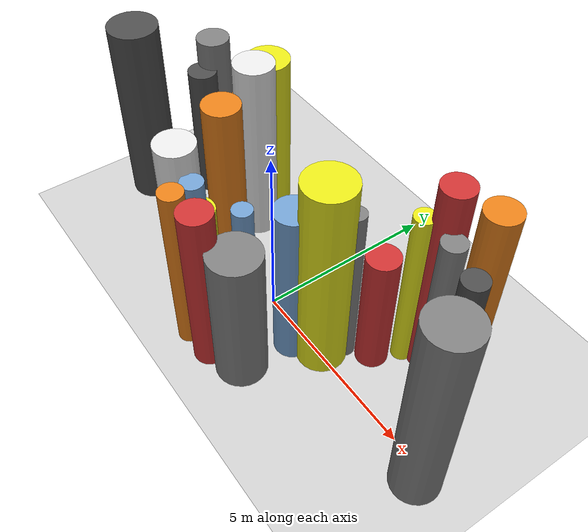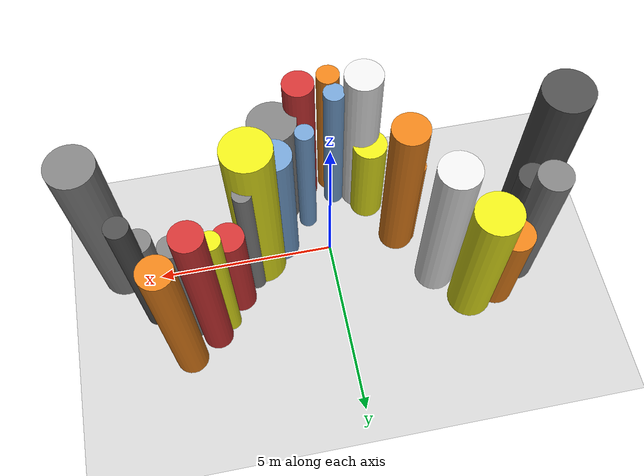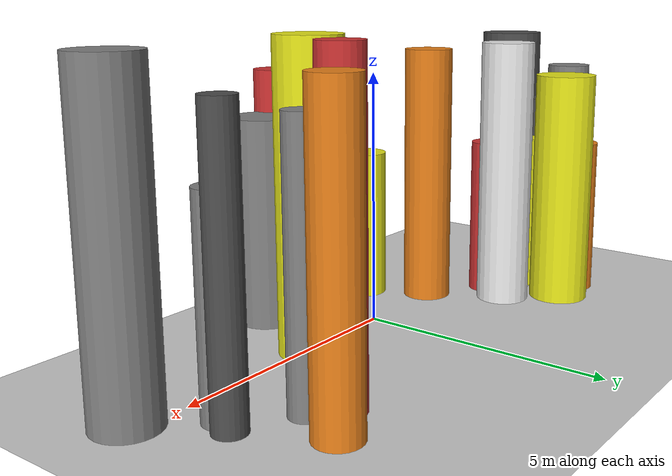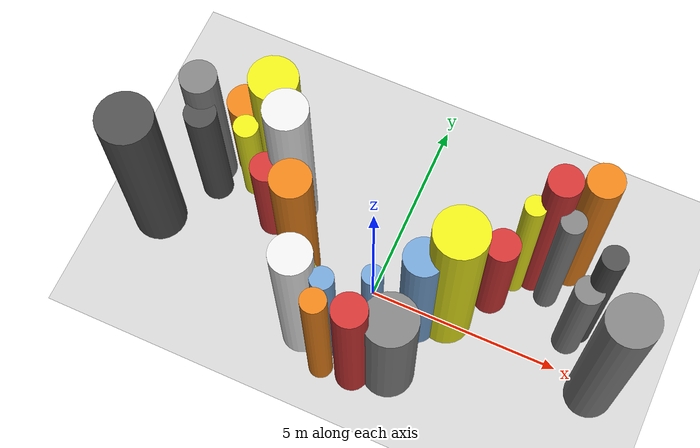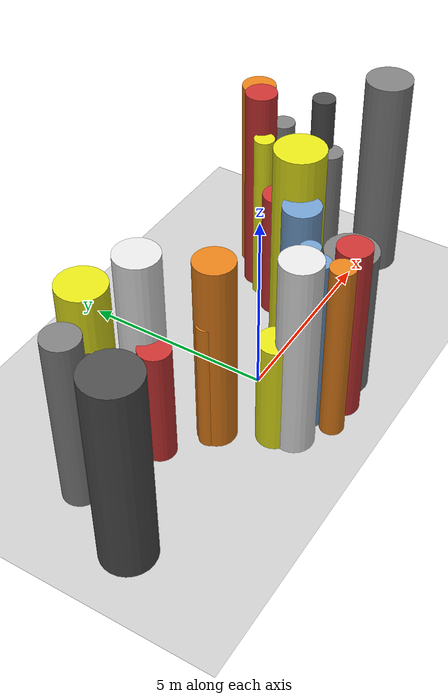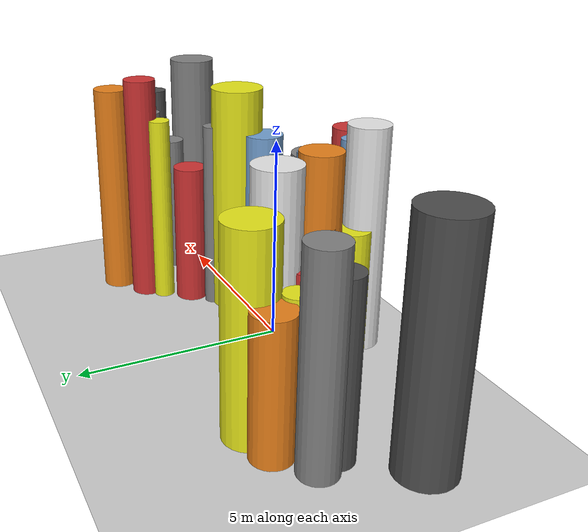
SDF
<?xml version='1.0'?>
<sdf version='1.6'>
  <world name='routeA_rl_v1__dense_recovery__rl_test__s_turn_multi_obstacle__000047'>
    <!-- Sun light -->
    <light name='sun' type='directional'>
      <cast_shadows>1</cast_shadows>
      <pose>0 0 10 0 0 0</pose>
      <diffuse>0.8 0.8 0.8 1</diffuse>
      <specular>0.2 0.2 0.2 1</specular>
      <attenuation>
        <range>1000</range>
        <constant>0.9</constant>
        <linear>0.01</linear>
        <quadratic>0.001</quadratic>
      </attenuation>
      <direction>-0.5 0.1 -0.9</direction>
    </light>

    <!-- Ground plane -->
    <model name='ground_plane'>
      <static>1</static>
      <link name='link'>
        <collision name='collision'>
          <geometry>
            <plane>
              <normal>0 0 1</normal>
              <size>100 100</size>
            </plane>
          </geometry>
          <surface>
            <contact>
              <collide_bitmask>65535</collide_bitmask>
              <ode/>
            </contact>
            <friction>
              <ode>
                <mu>100</mu>
                <mu2>50</mu2>
              </ode>
              <torsional><ode/></torsional>
            </friction>
            <bounce/>
          </surface>
          <max_contacts>10</max_contacts>
        </collision>
        <visual name='visual'>
          <cast_shadows>0</cast_shadows>
          <geometry>
            <plane>
              <normal>0 0 1</normal>
              <size>100 100</size>
            </plane>
          </geometry>
          <material>
            <script>
              <uri>file://media/materials/scripts/gazebo.material</uri>
              <n>Gazebo/Grey</n>
            </script>
          </material>
        </visual>
      </link>
    </model>

    <!-- Environment -->
    <magnetic_field>6e-06 2.3e-05 -4.2e-05</magnetic_field>
    <atmosphere type='adiabatic'/>
    <physics name='default_physics' default='0' type='ode'>
      <gravity>0 0 -9.8</gravity>
      <max_step_size>0.004</max_step_size>
      <real_time_factor>1</real_time_factor>
      <real_time_update_rate>250</real_time_update_rate>
    </physics>
    <scene>
      <ambient>0.4 0.4 0.4 1</ambient>
      <background>0.7 0.7 0.7 1</background>
      <shadows>1</shadows>
    </scene>
    <wind/>
    <spherical_coordinates>
      <surface_model>EARTH_WGS84</surface_model>
      <latitude_deg>0</latitude_deg>
      <longitude_deg>0</longitude_deg>
      <elevation>0</elevation>
      <heading_deg>0</heading_deg>
    </spherical_coordinates>

    <!-- ============ OBSTACLES (28) ============ -->
    <model name='s_turn_obs_0'>
      <static>1</static>
      <link name='link'>
        <visual name='visual'>
          <geometry>
            <cylinder>
              <radius>0.6884</radius>
              <length>5.5017</length>
            </cylinder>
          </geometry>
          <material>
            <script>
              <n>Gazebo/DarkGrey</n>
              <uri>file://media/materials/scripts/gazebo.material</uri>
            </script>
            <ambient>0.3 0.3 0.3 1</ambient>
          </material>
        </visual>
        <collision name='collision'>
          <geometry>
            <cylinder>
              <radius>0.6884</radius>
              <length>5.5017</length>
            </cylinder>
          </geometry>
          <max_contacts>10</max_contacts>
          <surface>
            <contact><ode/></contact>
            <bounce/>
            <friction>
              <ode><mu>1</mu><mu2>1</mu2></ode>
              <torsional><ode/></torsional>
            </friction>
          </surface>
        </collision>
      </link>
      <pose>-6.0000 -0.2894 2.7509 0 0 0.0000</pose>
    </model>

    <model name='s_turn_obs_1'>
      <static>1</static>
      <link name='link'>
        <visual name='visual'>
          <geometry>
            <cylinder>
              <radius>0.4552</radius>
              <length>4.8681</length>
            </cylinder>
          </geometry>
          <material>
            <script>
              <n>Gazebo/Grey</n>
              <uri>file://media/materials/scripts/gazebo.material</uri>
            </script>
            <ambient>0.5 0.5 0.5 1</ambient>
          </material>
        </visual>
        <collision name='collision'>
          <geometry>
            <cylinder>
              <radius>0.4552</radius>
              <length>4.8681</length>
            </cylinder>
          </geometry>
          <max_contacts>10</max_contacts>
          <surface>
            <contact><ode/></contact>
            <bounce/>
            <friction>
              <ode><mu>1</mu><mu2>1</mu2></ode>
              <torsional><ode/></torsional>
            </friction>
          </surface>
        </collision>
      </link>
      <pose>-5.2000 1.6193 2.4341 0 0 0.0000</pose>
    </model>

    <model name='s_turn_obs_2'>
      <static>1</static>
      <link name='link'>
        <visual name='visual'>
          <geometry>
            <cylinder>
              <radius>0.4863</radius>
              <length>3.2634</length>
            </cylinder>
          </geometry>
          <material>
            <script>
              <n>Gazebo/Orange</n>
              <uri>file://media/materials/scripts/gazebo.material</uri>
            </script>
            <ambient>0.9 0.5 0.1 1</ambient>
          </material>
        </visual>
        <collision name='collision'>
          <geometry>
            <cylinder>
              <radius>0.4863</radius>
              <length>3.2634</length>
            </cylinder>
          </geometry>
          <max_contacts>10</max_contacts>
          <surface>
            <contact><ode/></contact>
            <bounce/>
            <friction>
              <ode><mu>1</mu><mu2>1</mu2></ode>
              <torsional><ode/></torsional>
            </friction>
          </surface>
        </collision>
      </link>
      <pose>-4.4000 2.2188 1.6317 0 0 0.0000</pose>
    </model>

    <model name='s_turn_obs_3'>
      <static>1</static>
      <link name='link'>
        <visual name='visual'>
          <geometry>
            <cylinder>
              <radius>0.6132</radius>
              <length>4.8075</length>
            </cylinder>
          </geometry>
          <material>
            <script>
              <n>Gazebo/Yellow</n>
              <uri>file://media/materials/scripts/gazebo.material</uri>
            </script>
            <ambient>0.9 0.9 0.1 1</ambient>
          </material>
        </visual>
        <collision name='collision'>
          <geometry>
            <cylinder>
              <radius>0.6132</radius>
              <length>4.8075</length>
            </cylinder>
          </geometry>
          <max_contacts>10</max_contacts>
          <surface>
            <contact><ode/></contact>
            <bounce/>
            <friction>
              <ode><mu>1</mu><mu2>1</mu2></ode>
              <torsional><ode/></torsional>
            </friction>
          </surface>
        </collision>
      </link>
      <pose>-3.6000 2.3266 2.4037 0 0 0.0000</pose>
    </model>

    <model name='s_turn_obs_4'>
      <static>1</static>
      <link name='link'>
        <visual name='visual'>
          <geometry>
            <cylinder>
              <radius>0.5474</radius>
              <length>5.4879</length>
            </cylinder>
          </geometry>
          <material>
            <script>
              <n>Gazebo/White</n>
              <uri>file://media/materials/scripts/gazebo.material</uri>
            </script>
            <ambient>0.9 0.9 0.9 1</ambient>
          </material>
        </visual>
        <collision name='collision'>
          <geometry>
            <cylinder>
              <radius>0.5474</radius>
              <length>5.4879</length>
            </cylinder>
          </geometry>
          <max_contacts>10</max_contacts>
          <surface>
            <contact><ode/></contact>
            <bounce/>
            <friction>
              <ode><mu>1</mu><mu2>1</mu2></ode>
              <torsional><ode/></torsional>
            </friction>
          </surface>
        </collision>
      </link>
      <pose>-2.8000 1.3881 2.7439 0 0 0.0000</pose>
    </model>

    <model name='s_turn_obs_5'>
      <static>1</static>
      <link name='link'>
        <visual name='visual'>
          <geometry>
            <cylinder>
              <radius>0.4955</radius>
              <length>5.3435</length>
            </cylinder>
          </geometry>
          <material>
            <script>
              <n>Gazebo/Orange</n>
              <uri>file://media/materials/scripts/gazebo.material</uri>
            </script>
            <ambient>0.9 0.5 0.1 1</ambient>
          </material>
        </visual>
        <collision name='collision'>
          <geometry>
            <cylinder>
              <radius>0.4955</radius>
              <length>5.3435</length>
            </cylinder>
          </geometry>
          <max_contacts>10</max_contacts>
          <surface>
            <contact><ode/></contact>
            <bounce/>
            <friction>
              <ode><mu>1</mu><mu2>1</mu2></ode>
              <torsional><ode/></torsional>
            </friction>
          </surface>
        </collision>
      </link>
      <pose>-2.0000 -0.0532 2.6718 0 0 0.0000</pose>
    </model>

    <model name='s_turn_obs_6'>
      <static>1</static>
      <link name='link'>
        <visual name='visual'>
          <geometry>
            <cylinder>
              <radius>0.5070</radius>
              <length>5.5230</length>
            </cylinder>
          </geometry>
          <material>
            <script>
              <n>Gazebo/White</n>
              <uri>file://media/materials/scripts/gazebo.material</uri>
            </script>
            <ambient>0.9 0.9 0.9 1</ambient>
          </material>
        </visual>
        <collision name='collision'>
          <geometry>
            <cylinder>
              <radius>0.5070</radius>
              <length>5.5230</length>
            </cylinder>
          </geometry>
          <max_contacts>10</max_contacts>
          <surface>
            <contact><ode/></contact>
            <bounce/>
            <friction>
              <ode><mu>1</mu><mu2>1</mu2></ode>
              <torsional><ode/></torsional>
            </friction>
          </surface>
        </collision>
      </link>
      <pose>-1.2000 -1.7291 2.7615 0 0 0.0000</pose>
    </model>

    <model name='s_turn_obs_7'>
      <static>1</static>
      <link name='link'>
        <visual name='visual'>
          <geometry>
            <cylinder>
              <radius>0.3088</radius>
              <length>5.0113</length>
            </cylinder>
          </geometry>
          <material>
            <script>
              <n>Gazebo/Orange</n>
              <uri>file://media/materials/scripts/gazebo.material</uri>
            </script>
            <ambient>0.9 0.5 0.1 1</ambient>
          </material>
        </visual>
        <collision name='collision'>
          <geometry>
            <cylinder>
              <radius>0.3088</radius>
              <length>5.0113</length>
            </cylinder>
          </geometry>
          <max_contacts>10</max_contacts>
          <surface>
            <contact><ode/></contact>
            <bounce/>
            <friction>
              <ode><mu>1</mu><mu2>1</mu2></ode>
              <torsional><ode/></torsional>
            </friction>
          </surface>
        </collision>
      </link>
      <pose>-0.4000 -2.3316 2.5057 0 0 0.0000</pose>
    </model>

    <model name='s_turn_obs_8'>
      <static>1</static>
      <link name='link'>
        <visual name='visual'>
          <geometry>
            <cylinder>
              <radius>0.4260</radius>
              <length>4.9899</length>
            </cylinder>
          </geometry>
          <material>
            <script>
              <n>Gazebo/Red</n>
              <uri>file://media/materials/scripts/gazebo.material</uri>
            </script>
            <ambient>0.8 0.2 0.2 1</ambient>
          </material>
        </visual>
        <collision name='collision'>
          <geometry>
            <cylinder>
              <radius>0.4260</radius>
              <length>4.9899</length>
            </cylinder>
          </geometry>
          <max_contacts>10</max_contacts>
          <surface>
            <contact><ode/></contact>
            <bounce/>
            <friction>
              <ode><mu>1</mu><mu2>1</mu2></ode>
              <torsional><ode/></torsional>
            </friction>
          </surface>
        </collision>
      </link>
      <pose>0.4000 -2.2056 2.4950 0 0 0.0000</pose>
    </model>

    <model name='s_turn_obs_9'>
      <static>1</static>
      <link name='link'>
        <visual name='visual'>
          <geometry>
            <cylinder>
              <radius>0.6643</radius>
              <length>4.1486</length>
            </cylinder>
          </geometry>
          <material>
            <script>
              <n>Gazebo/Grey</n>
              <uri>file://media/materials/scripts/gazebo.material</uri>
            </script>
            <ambient>0.5 0.5 0.5 1</ambient>
          </material>
        </visual>
        <collision name='collision'>
          <geometry>
            <cylinder>
              <radius>0.6643</radius>
              <length>4.1486</length>
            </cylinder>
          </geometry>
          <max_contacts>10</max_contacts>
          <surface>
            <contact><ode/></contact>
            <bounce/>
            <friction>
              <ode><mu>1</mu><mu2>1</mu2></ode>
              <torsional><ode/></torsional>
            </friction>
          </surface>
        </collision>
      </link>
      <pose>1.2000 -1.7755 2.0743 0 0 0.0000</pose>
    </model>

    <model name='s_turn_obs_10'>
      <static>1</static>
      <link name='link'>
        <visual name='visual'>
          <geometry>
            <cylinder>
              <radius>0.6462</radius>
              <length>5.8435</length>
            </cylinder>
          </geometry>
          <material>
            <script>
              <n>Gazebo/Yellow</n>
              <uri>file://media/materials/scripts/gazebo.material</uri>
            </script>
            <ambient>0.9 0.9 0.1 1</ambient>
          </material>
        </visual>
        <collision name='collision'>
          <geometry>
            <cylinder>
              <radius>0.6462</radius>
              <length>5.8435</length>
            </cylinder>
          </geometry>
          <max_contacts>10</max_contacts>
          <surface>
            <contact><ode/></contact>
            <bounce/>
            <friction>
              <ode><mu>1</mu><mu2>1</mu2></ode>
              <torsional><ode/></torsional>
            </friction>
          </surface>
        </collision>
      </link>
      <pose>2.0000 0.1001 2.9217 0 0 0.0000</pose>
    </model>

    <model name='s_turn_obs_11'>
      <static>1</static>
      <link name='link'>
        <visual name='visual'>
          <geometry>
            <cylinder>
              <radius>0.4209</radius>
              <length>3.6782</length>
            </cylinder>
          </geometry>
          <material>
            <script>
              <n>Gazebo/Red</n>
              <uri>file://media/materials/scripts/gazebo.material</uri>
            </script>
            <ambient>0.8 0.2 0.2 1</ambient>
          </material>
        </visual>
        <collision name='collision'>
          <geometry>
            <cylinder>
              <radius>0.4209</radius>
              <length>3.6782</length>
            </cylinder>
          </geometry>
          <max_contacts>10</max_contacts>
          <surface>
            <contact><ode/></contact>
            <bounce/>
            <friction>
              <ode><mu>1</mu><mu2>1</mu2></ode>
              <torsional><ode/></torsional>
            </friction>
          </surface>
        </collision>
      </link>
      <pose>2.8000 1.0880 1.8391 0 0 0.0000</pose>
    </model>

    <model name='s_turn_obs_12'>
      <static>1</static>
      <link name='link'>
        <visual name='visual'>
          <geometry>
            <cylinder>
              <radius>0.4067</radius>
              <length>5.8968</length>
            </cylinder>
          </geometry>
          <material>
            <script>
              <n>Gazebo/Red</n>
              <uri>file://media/materials/scripts/gazebo.material</uri>
            </script>
            <ambient>0.8 0.2 0.2 1</ambient>
          </material>
        </visual>
        <collision name='collision'>
          <geometry>
            <cylinder>
              <radius>0.4067</radius>
              <length>5.8968</length>
            </cylinder>
          </geometry>
          <max_contacts>10</max_contacts>
          <surface>
            <contact><ode/></contact>
            <bounce/>
            <friction>
              <ode><mu>1</mu><mu2>1</mu2></ode>
              <torsional><ode/></torsional>
            </friction>
          </surface>
        </collision>
      </link>
      <pose>3.6000 2.1049 2.9484 0 0 0.0000</pose>
    </model>

    <model name='s_turn_obs_13'>
      <static>1</static>
      <link name='link'>
        <visual name='visual'>
          <geometry>
            <cylinder>
              <radius>0.4386</radius>
              <length>5.5353</length>
            </cylinder>
          </geometry>
          <material>
            <script>
              <n>Gazebo/Orange</n>
              <uri>file://media/materials/scripts/gazebo.material</uri>
            </script>
            <ambient>0.9 0.5 0.1 1</ambient>
          </material>
        </visual>
        <collision name='collision'>
          <geometry>
            <cylinder>
              <radius>0.4386</radius>
              <length>5.5353</length>
            </cylinder>
          </geometry>
          <max_contacts>10</max_contacts>
          <surface>
            <contact><ode/></contact>
            <bounce/>
            <friction>
              <ode><mu>1</mu><mu2>1</mu2></ode>
              <torsional><ode/></torsional>
            </friction>
          </surface>
        </collision>
      </link>
      <pose>4.4000 2.6421 2.7677 0 0 0.0000</pose>
    </model>

    <model name='s_turn_obs_14'>
      <static>1</static>
      <link name='link'>
        <visual name='visual'>
          <geometry>
            <cylinder>
              <radius>0.3063</radius>
              <length>5.1872</length>
            </cylinder>
          </geometry>
          <material>
            <script>
              <n>Gazebo/DarkGrey</n>
              <uri>file://media/materials/scripts/gazebo.material</uri>
            </script>
            <ambient>0.3 0.3 0.3 1</ambient>
          </material>
        </visual>
        <collision name='collision'>
          <geometry>
            <cylinder>
              <radius>0.3063</radius>
              <length>5.1872</length>
            </cylinder>
          </geometry>
          <max_contacts>10</max_contacts>
          <surface>
            <contact><ode/></contact>
            <bounce/>
            <friction>
              <ode><mu>1</mu><mu2>1</mu2></ode>
              <torsional><ode/></torsional>
            </friction>
          </surface>
        </collision>
      </link>
      <pose>5.2000 1.1669 2.5936 0 0 0.0000</pose>
    </model>

    <model name='s_turn_obs_15'>
      <static>1</static>
      <link name='link'>
        <visual name='visual'>
          <geometry>
            <cylinder>
              <radius>0.6166</radius>
              <length>5.7944</length>
            </cylinder>
          </geometry>
          <material>
            <script>
              <n>Gazebo/Grey</n>
              <uri>file://media/materials/scripts/gazebo.material</uri>
            </script>
            <ambient>0.5 0.5 0.5 1</ambient>
          </material>
        </visual>
        <collision name='collision'>
          <geometry>
            <cylinder>
              <radius>0.6166</radius>
              <length>5.7944</length>
            </cylinder>
          </geometry>
          <max_contacts>10</max_contacts>
          <surface>
            <contact><ode/></contact>
            <bounce/>
            <friction>
              <ode><mu>1</mu><mu2>1</mu2></ode>
              <torsional><ode/></torsional>
            </friction>
          </surface>
        </collision>
      </link>
      <pose>6.0000 -0.2592 2.8972 0 0 0.0000</pose>
    </model>

    <model name='s_turn_obs2_0'>
      <static>1</static>
      <link name='link'>
        <visual name='visual'>
          <geometry>
            <cylinder>
              <radius>0.4029</radius>
              <length>4.1086</length>
            </cylinder>
          </geometry>
          <material>
            <script>
              <n>Gazebo/DarkGrey</n>
              <uri>file://media/materials/scripts/gazebo.material</uri>
            </script>
            <ambient>0.3 0.3 0.3 1</ambient>
          </material>
        </visual>
        <collision name='collision'>
          <geometry>
            <cylinder>
              <radius>0.4029</radius>
              <length>4.1086</length>
            </cylinder>
          </geometry>
          <max_contacts>10</max_contacts>
          <surface>
            <contact><ode/></contact>
            <bounce/>
            <friction>
              <ode><mu>1</mu><mu2>1</mu2></ode>
              <torsional><ode/></torsional>
            </friction>
          </surface>
        </collision>
      </link>
      <pose>-5.0000 1.1088 2.0543 0 0 0.0000</pose>
    </model>

    <model name='s_turn_obs2_1'>
      <static>1</static>
      <link name='link'>
        <visual name='visual'>
          <geometry>
            <cylinder>
              <radius>0.3145</radius>
              <length>3.3404</length>
            </cylinder>
          </geometry>
          <material>
            <script>
              <n>Gazebo/Yellow</n>
              <uri>file://media/materials/scripts/gazebo.material</uri>
            </script>
            <ambient>0.9 0.9 0.1 1</ambient>
          </material>
        </visual>
        <collision name='collision'>
          <geometry>
            <cylinder>
              <radius>0.3145</radius>
              <length>3.3404</length>
            </cylinder>
          </geometry>
          <max_contacts>10</max_contacts>
          <surface>
            <contact><ode/></contact>
            <bounce/>
            <friction>
              <ode><mu>1</mu><mu2>1</mu2></ode>
              <torsional><ode/></torsional>
            </friction>
          </surface>
        </collision>
      </link>
      <pose>-4.0909 1.5673 1.6702 0 0 0.0000</pose>
    </model>

    <model name='s_turn_obs2_2'>
      <static>1</static>
      <link name='link'>
        <visual name='visual'>
          <geometry>
            <cylinder>
              <radius>0.4040</radius>
              <length>3.3059</length>
            </cylinder>
          </geometry>
          <material>
            <script>
              <n>Gazebo/Red</n>
              <uri>file://media/materials/scripts/gazebo.material</uri>
            </script>
            <ambient>0.8 0.2 0.2 1</ambient>
          </material>
        </visual>
        <collision name='collision'>
          <geometry>
            <cylinder>
              <radius>0.4040</radius>
              <length>3.3059</length>
            </cylinder>
          </geometry>
          <max_contacts>10</max_contacts>
          <surface>
            <contact><ode/></contact>
            <bounce/>
            <friction>
              <ode><mu>1</mu><mu2>1</mu2></ode>
              <torsional><ode/></torsional>
            </friction>
          </surface>
        </collision>
      </link>
      <pose>-3.1818 0.7966 1.6530 0 0 0.0000</pose>
    </model>

    <model name='s_turn_obs2_3'>
      <static>1</static>
      <link name='link'>
        <visual name='visual'>
          <geometry>
            <cylinder>
              <radius>0.2691</radius>
              <length>3.7217</length>
            </cylinder>
          </geometry>
          <material>
            <script>
              <n>Gazebo/Orange</n>
              <uri>file://media/materials/scripts/gazebo.material</uri>
            </script>
            <ambient>0.9 0.5 0.1 1</ambient>
          </material>
        </visual>
        <collision name='collision'>
          <geometry>
            <cylinder>
              <radius>0.2691</radius>
              <length>3.7217</length>
            </cylinder>
          </geometry>
          <max_contacts>10</max_contacts>
          <surface>
            <contact><ode/></contact>
            <bounce/>
            <friction>
              <ode><mu>1</mu><mu2>1</mu2></ode>
              <torsional><ode/></torsional>
            </friction>
          </surface>
        </collision>
      </link>
      <pose>-2.2727 -0.0125 1.8609 0 0 0.0000</pose>
    </model>

    <model name='s_turn_obs2_4'>
      <static>1</static>
      <link name='link'>
        <visual name='visual'>
          <geometry>
            <cylinder>
              <radius>0.4729</radius>
              <length>3.1162</length>
            </cylinder>
          </geometry>
          <material>
            <script>
              <n>Gazebo/Yellow</n>
              <uri>file://media/materials/scripts/gazebo.material</uri>
            </script>
            <ambient>0.9 0.9 0.1 1</ambient>
          </material>
        </visual>
        <collision name='collision'>
          <geometry>
            <cylinder>
              <radius>0.4729</radius>
              <length>3.1162</length>
            </cylinder>
          </geometry>
          <max_contacts>10</max_contacts>
          <surface>
            <contact><ode/></contact>
            <bounce/>
            <friction>
              <ode><mu>1</mu><mu2>1</mu2></ode>
              <torsional><ode/></torsional>
            </friction>
          </surface>
        </collision>
      </link>
      <pose>-1.3636 -1.2908 1.5581 0 0 0.0000</pose>
    </model>

    <model name='s_turn_obs2_5'>
      <static>1</static>
      <link name='link'>
        <visual name='visual'>
          <geometry>
            <cylinder>
              <radius>0.2845</radius>
              <length>4.9738</length>
            </cylinder>
          </geometry>
          <material>
            <script>
              <n>Gazebo/Blue</n>
              <uri>file://media/materials/scripts/gazebo.material</uri>
            </script>
            <ambient>0.447 0.624 0.812 1</ambient>
          </material>
        </visual>
        <collision name='collision'>
          <geometry>
            <cylinder>
              <radius>0.2845</radius>
              <length>4.9738</length>
            </cylinder>
          </geometry>
          <max_contacts>10</max_contacts>
          <surface>
            <contact><ode/></contact>
            <bounce/>
            <friction>
              <ode><mu>1</mu><mu2>1</mu2></ode>
              <torsional><ode/></torsional>
            </friction>
          </surface>
        </collision>
      </link>
      <pose>-0.4545 -1.7777 2.4869 0 0 0.0000</pose>
    </model>

    <model name='s_turn_obs2_6'>
      <static>1</static>
      <link name='link'>
        <visual name='visual'>
          <geometry>
            <cylinder>
              <radius>0.2572</radius>
              <length>4.4680</length>
            </cylinder>
          </geometry>
          <material>
            <script>
              <n>Gazebo/Blue</n>
              <uri>file://media/materials/scripts/gazebo.material</uri>
            </script>
            <ambient>0.447 0.624 0.812 1</ambient>
          </material>
        </visual>
        <collision name='collision'>
          <geometry>
            <cylinder>
              <radius>0.2572</radius>
              <length>4.4680</length>
            </cylinder>
          </geometry>
          <max_contacts>10</max_contacts>
          <surface>
            <contact><ode/></contact>
            <bounce/>
            <friction>
              <ode><mu>1</mu><mu2>1</mu2></ode>
              <torsional><ode/></torsional>
            </friction>
          </surface>
        </collision>
      </link>
      <pose>0.4545 -1.0796 2.2340 0 0 0.0000</pose>
    </model>

    <model name='s_turn_obs2_7'>
      <static>1</static>
      <link name='link'>
        <visual name='visual'>
          <geometry>
            <cylinder>
              <radius>0.4842</radius>
              <length>4.7684</length>
            </cylinder>
          </geometry>
          <material>
            <script>
              <n>Gazebo/Blue</n>
              <uri>file://media/materials/scripts/gazebo.material</uri>
            </script>
            <ambient>0.447 0.624 0.812 1</ambient>
          </material>
        </visual>
        <collision name='collision'>
          <geometry>
            <cylinder>
              <radius>0.4842</radius>
              <length>4.7684</length>
            </cylinder>
          </geometry>
          <max_contacts>10</max_contacts>
          <surface>
            <contact><ode/></contact>
            <bounce/>
            <friction>
              <ode><mu>1</mu><mu2>1</mu2></ode>
              <torsional><ode/></torsional>
            </friction>
          </surface>
        </collision>
      </link>
      <pose>1.3636 -0.3424 2.3842 0 0 0.0000</pose>
    </model>

    <model name='s_turn_obs2_8'>
      <static>1</static>
      <link name='link'>
        <visual name='visual'>
          <geometry>
            <cylinder>
              <radius>0.2475</radius>
              <length>4.8560</length>
            </cylinder>
          </geometry>
          <material>
            <script>
              <n>Gazebo/Grey</n>
              <uri>file://media/materials/scripts/gazebo.material</uri>
            </script>
            <ambient>0.5 0.5 0.5 1</ambient>
          </material>
        </visual>
        <collision name='collision'>
          <geometry>
            <cylinder>
              <radius>0.2475</radius>
              <length>4.8560</length>
            </cylinder>
          </geometry>
          <max_contacts>10</max_contacts>
          <surface>
            <contact><ode/></contact>
            <bounce/>
            <friction>
              <ode><mu>1</mu><mu2>1</mu2></ode>
              <torsional><ode/></torsional>
            </friction>
          </surface>
        </collision>
      </link>
      <pose>2.2727 0.6492 2.4280 0 0 0.0000</pose>
    </model>

    <model name='s_turn_obs2_9'>
      <static>1</static>
      <link name='link'>
        <visual name='visual'>
          <geometry>
            <cylinder>
              <radius>0.2686</radius>
              <length>4.8907</length>
            </cylinder>
          </geometry>
          <material>
            <script>
              <n>Gazebo/Yellow</n>
              <uri>file://media/materials/scripts/gazebo.material</uri>
            </script>
            <ambient>0.9 0.9 0.1 1</ambient>
          </material>
        </visual>
        <collision name='collision'>
          <geometry>
            <cylinder>
              <radius>0.2686</radius>
              <length>4.8907</length>
            </cylinder>
          </geometry>
          <max_contacts>10</max_contacts>
          <surface>
            <contact><ode/></contact>
            <bounce/>
            <friction>
              <ode><mu>1</mu><mu2>1</mu2></ode>
              <torsional><ode/></torsional>
            </friction>
          </surface>
        </collision>
      </link>
      <pose>3.1818 1.7561 2.4453 0 0 0.0000</pose>
    </model>

    <model name='s_turn_obs2_10'>
      <static>1</static>
      <link name='link'>
        <visual name='visual'>
          <geometry>
            <cylinder>
              <radius>0.3036</radius>
              <length>4.8879</length>
            </cylinder>
          </geometry>
          <material>
            <script>
              <n>Gazebo/Grey</n>
              <uri>file://media/materials/scripts/gazebo.material</uri>
            </script>
            <ambient>0.5 0.5 0.5 1</ambient>
          </material>
        </visual>
        <collision name='collision'>
          <geometry>
            <cylinder>
              <radius>0.3036</radius>
              <length>4.8879</length>
            </cylinder>
          </geometry>
          <max_contacts>10</max_contacts>
          <surface>
            <contact><ode/></contact>
            <bounce/>
            <friction>
              <ode><mu>1</mu><mu2>1</mu2></ode>
              <torsional><ode/></torsional>
            </friction>
          </surface>
        </collision>
      </link>
      <pose>4.0909 1.7311 2.4440 0 0 0.0000</pose>
    </model>

    <model name='s_turn_obs2_11'>
      <static>1</static>
      <link name='link'>
        <visual name='visual'>
          <geometry>
            <cylinder>
              <radius>0.3613</radius>
              <length>3.7794</length>
            </cylinder>
          </geometry>
          <material>
            <script>
              <n>Gazebo/Grey</n>
              <uri>file://media/materials/scripts/gazebo.material</uri>
            </script>
            <ambient>0.5 0.5 0.5 1</ambient>
          </material>
        </visual>
        <collision name='collision'>
          <geometry>
            <cylinder>
              <radius>0.3613</radius>
              <length>3.7794</length>
            </cylinder>
          </geometry>
          <max_contacts>10</max_contacts>
          <surface>
            <contact><ode/></contact>
            <bounce/>
            <friction>
              <ode><mu>1</mu><mu2>1</mu2></ode>
              <torsional><ode/></torsional>
            </friction>
          </surface>
        </collision>
      </link>
      <pose>5.0000 0.8194 1.8897 0 0 0.0000</pose>
    </model>

    <!-- GUI camera -->
    <gui fullscreen='0'>
      <camera name='user_camera'>
        <pose>-15 0 18 0 0.85 0.15</pose>
        <view_controller>orbit</view_controller>
        <projection_type>perspective</projection_type>
      </camera>
    </gui>
  </world>
</sdf>
